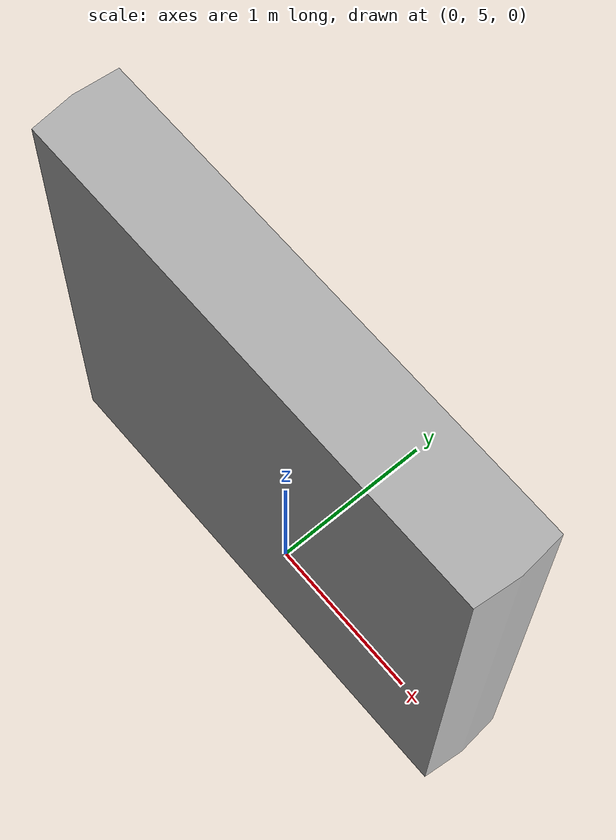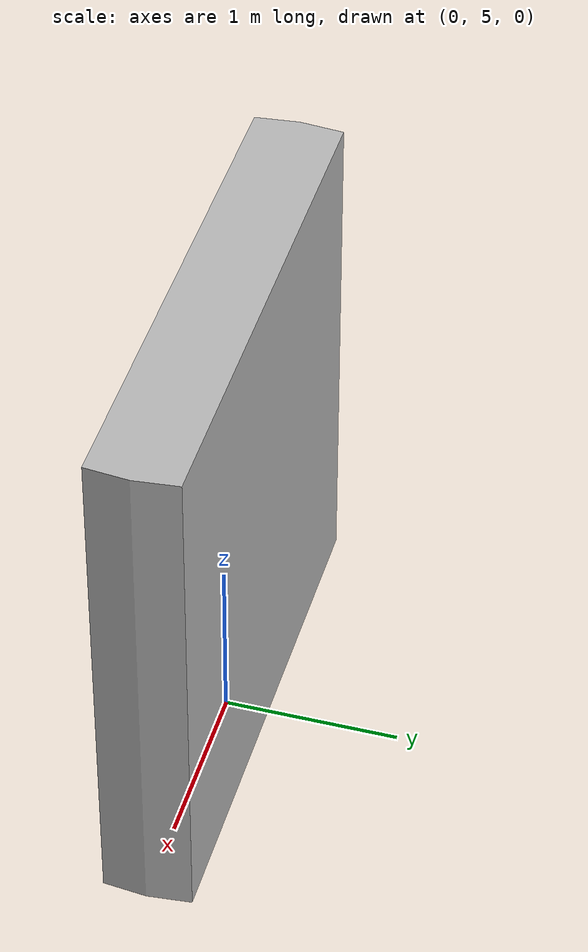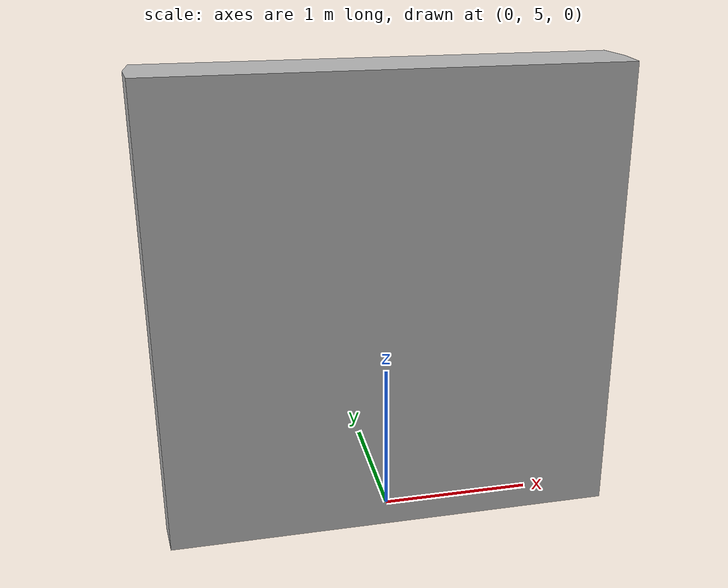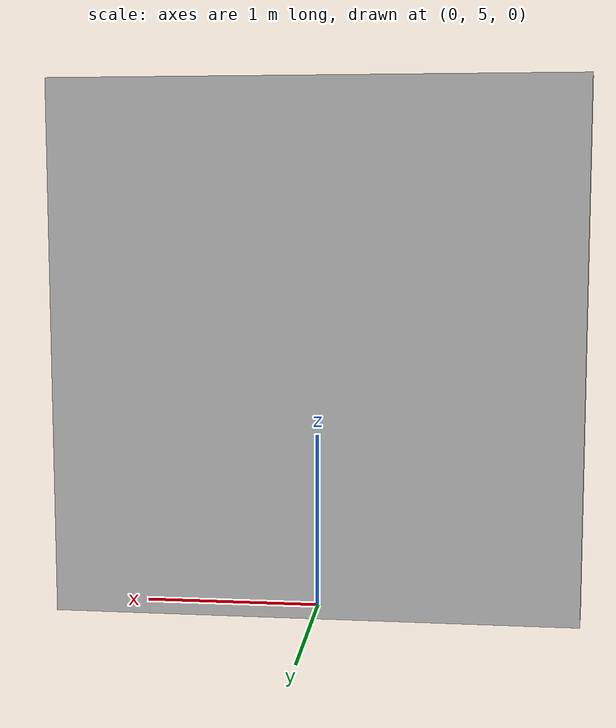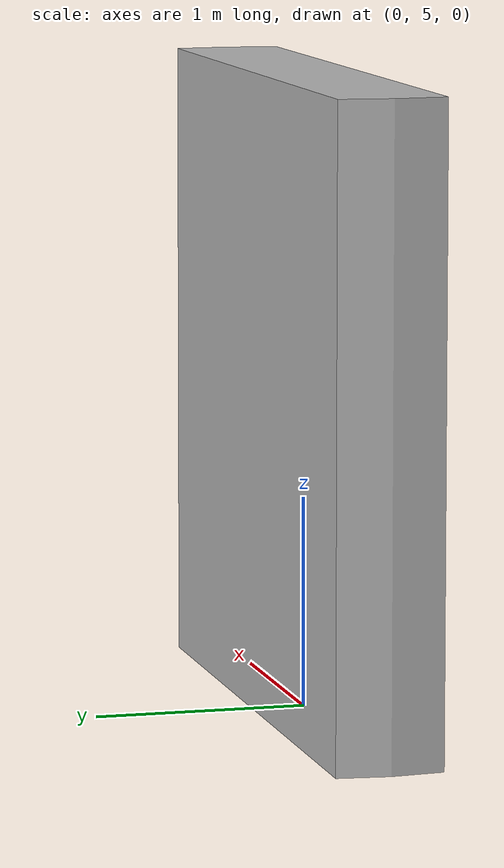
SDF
<?xml version="1.0" ?>
<sdf version="1.5">
  <model name="nist_maze_wall_120">
    <static>true</static>
    <link name="nist_maze_wall_120_link">
      <pose>0 -25 0.0 0 0 0</pose>
      <collision name="collision">
        <geometry>
          <mesh>
            <uri>model://nist_maze_wall_120/meshes/nist_maze_wall_120.dae</uri>
            <scale>2.5 50 2.5</scale>
          </mesh>
        </geometry>
      </collision>
      <visual name="visual">
        <geometry>
          <mesh>
            <uri>model://nist_maze_wall_120/meshes/nist_maze_wall_120.dae</uri>
            <scale>2.5 50 2.5</scale>
          </mesh>
        </geometry>
      </visual>
    </link>
  </model>
</sdf>
